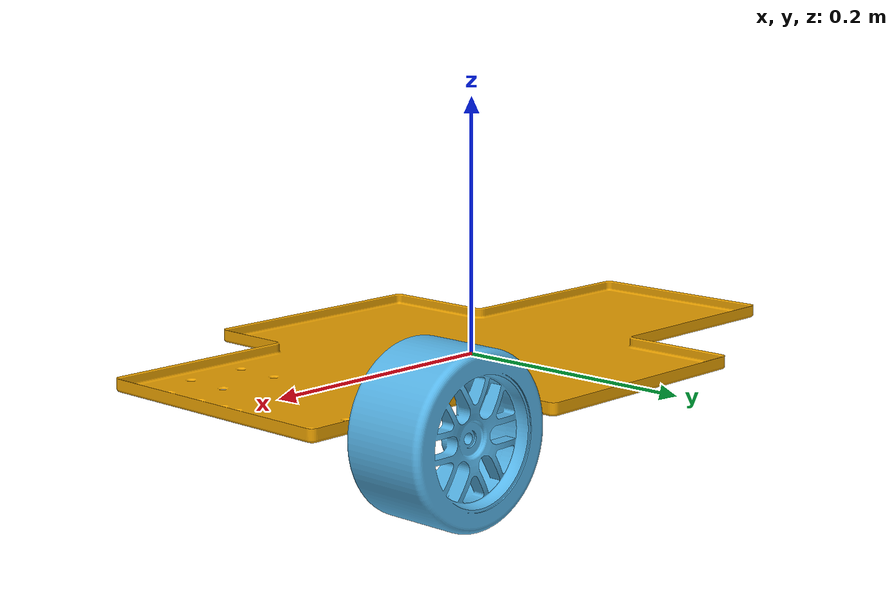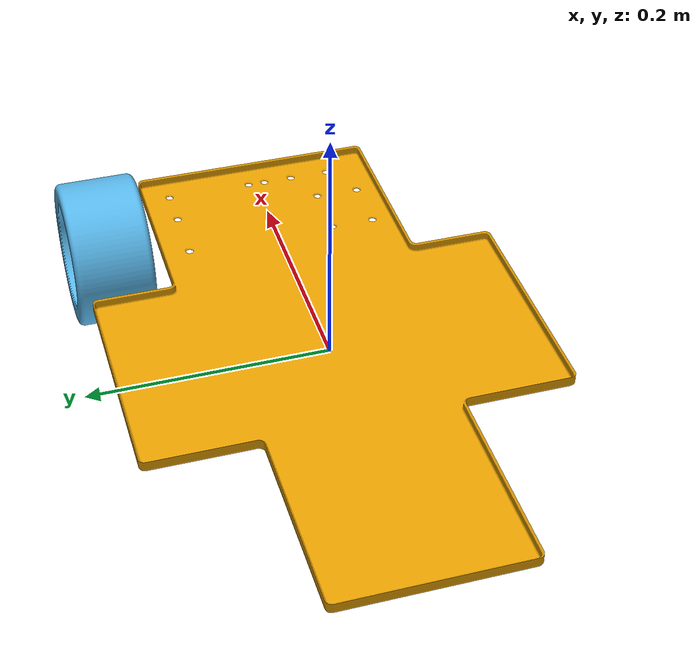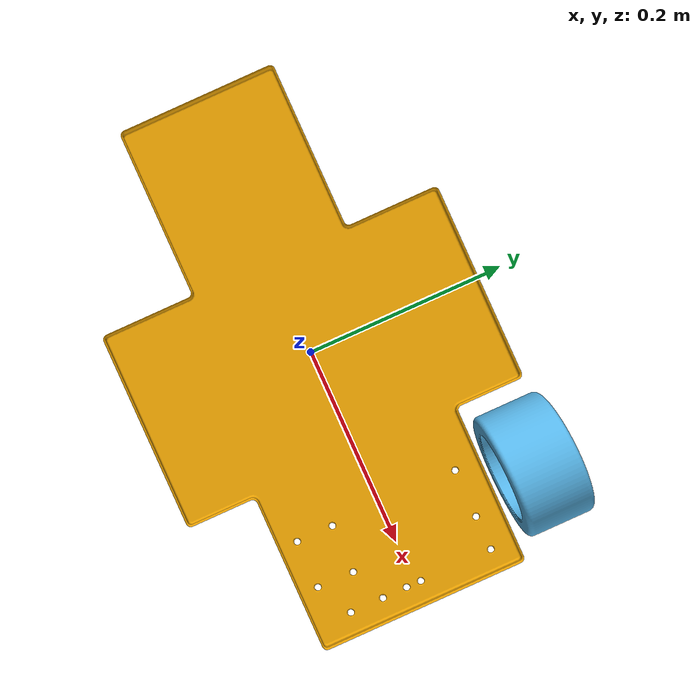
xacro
<?xml version="1.0"?>
<robot name="vehicle" xmlns:xacro="http://ros.org/wiki/xacro">

    <link name="base_link">
        <visual>
            <origin xyz="0 0 0" rpy="0 0 0"/>
            <geometry>
                <mesh filename="package://autonomous_vehicle_description/meshes/Base.stl"/>
            </geometry>
        </visual>
    </link>

    <link name="Wheel">
        <visual>
            <geometry>
                <mesh filename="package://autonomous_vehicle_description/meshes/LeftWheel.stl"/>
            </geometry>
        </visual>
    </link>

    <joint name="base_wheel_joint" type="continuous">
        <axis xyz="0 1 0"/>
        <parent link="base_link"/>
        <child link="Wheel"/>
        <origin xyz="0.185 0.15 0"/>
    </joint>

</robot>
